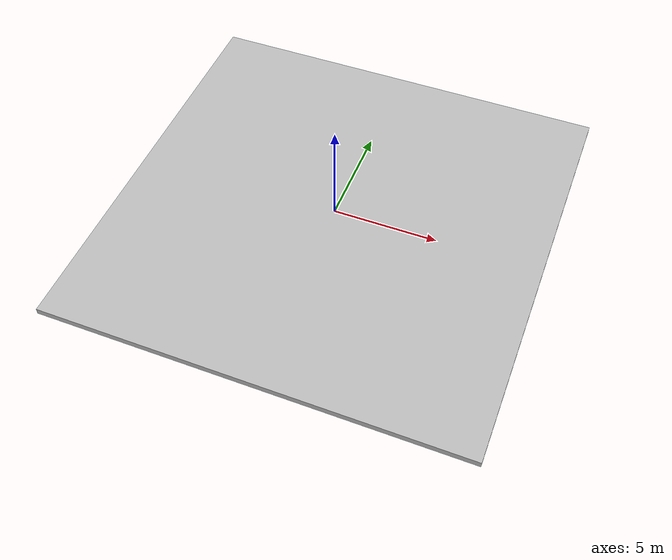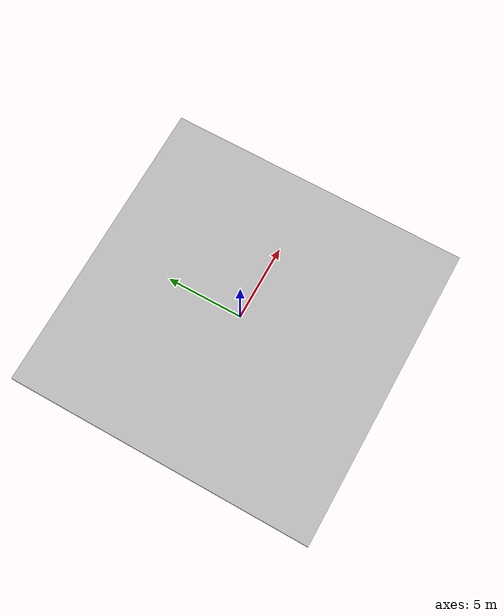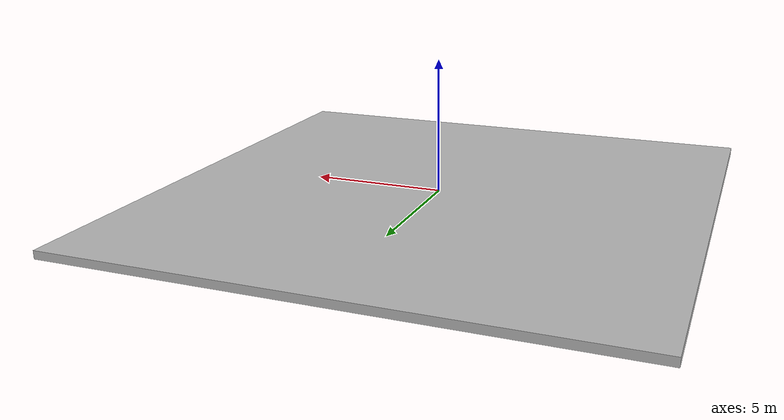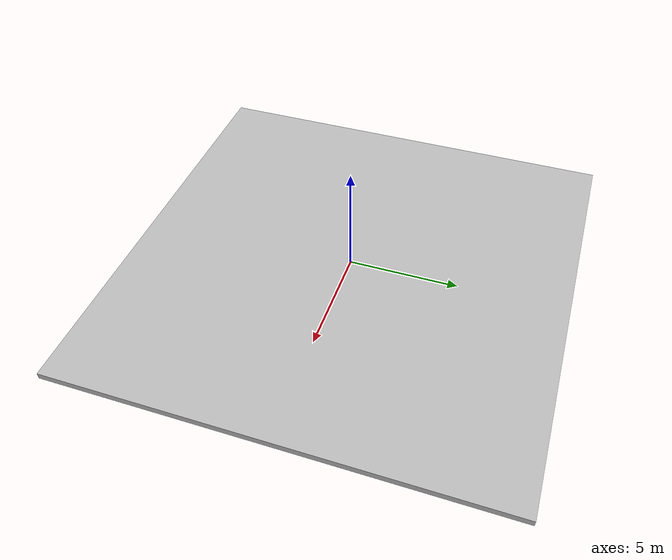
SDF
<?xml version="1.0" ?>
<sdf version="1.4">
  <model name="plane">
    <static>true</static>
    <pose>0 0 -0.15 0 0 0</pose>
    <link name="link">
      <collision name="collision">
        <geometry>
          <box>
            <size>20 20 0.3</size>
          </box>
        </geometry>
        <surface>
          <friction>
            <ode>
              <mu>1</mu>
              <mu2>1</mu2>
            </ode>
          </friction>
        </surface>
      </collision>
      <visual name="visual">
        <geometry>
          <box>
            <size>20 20 0.3</size>
          </box>
        </geometry>
        <material>
          <script>
          	<uri>model://materials/scripts</uri>
          	<uri>model://materials/textures</uri>
          	<name>forest/floor</name>
          </script>
        </material>
      </visual>
    </link>
  </model>
</sdf>
